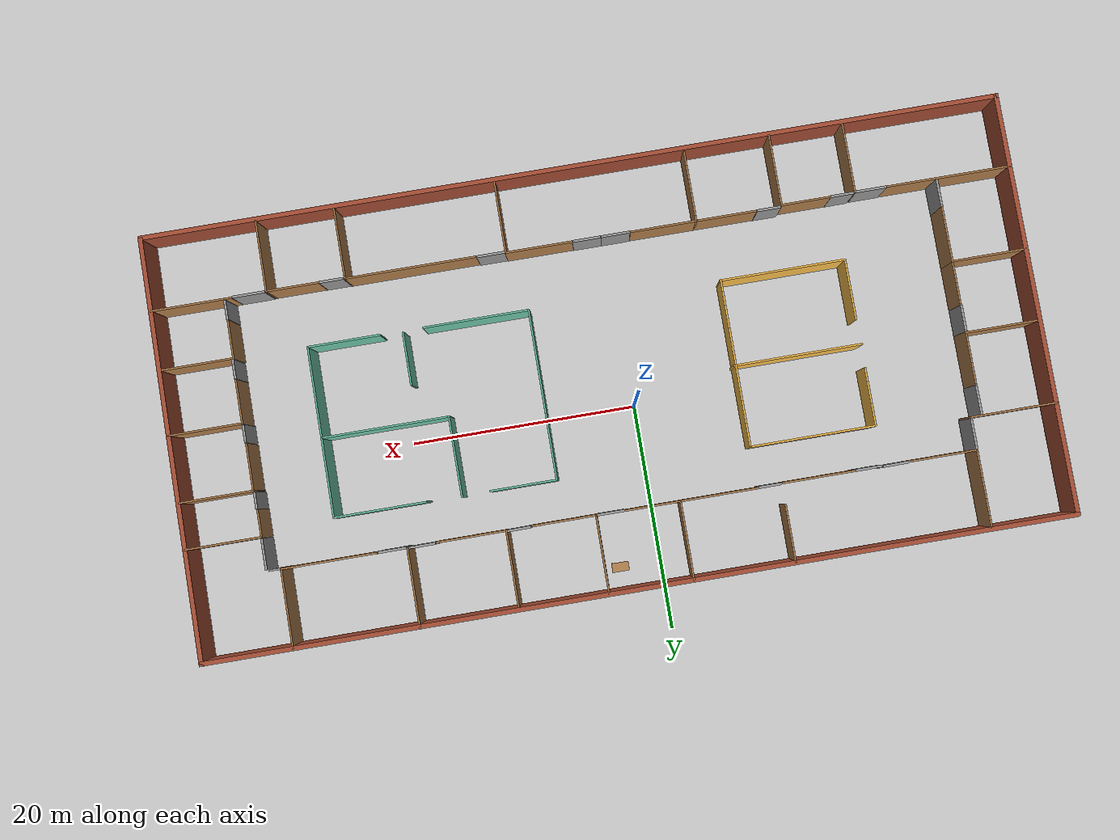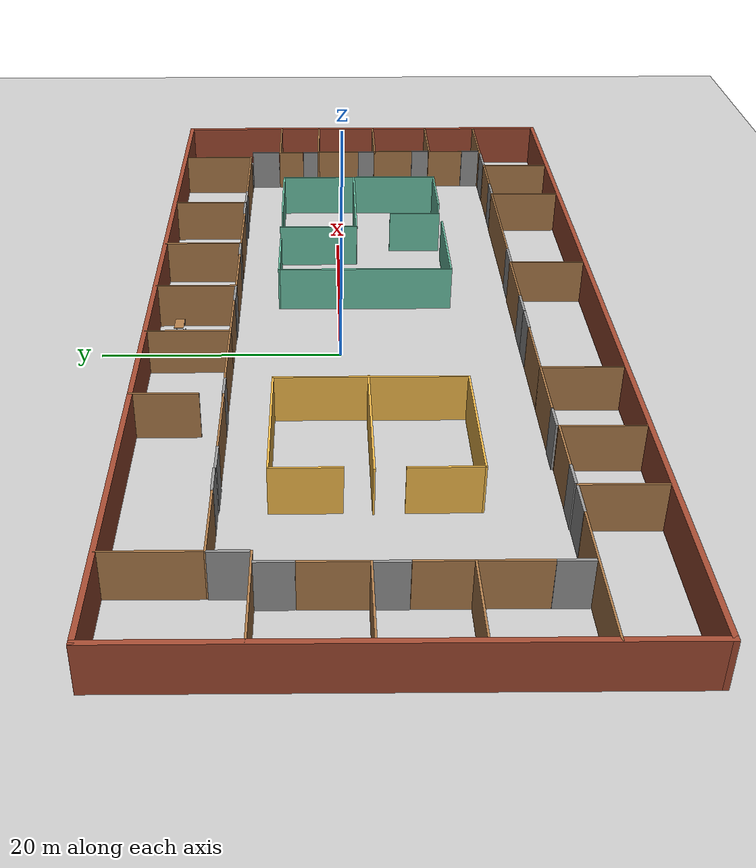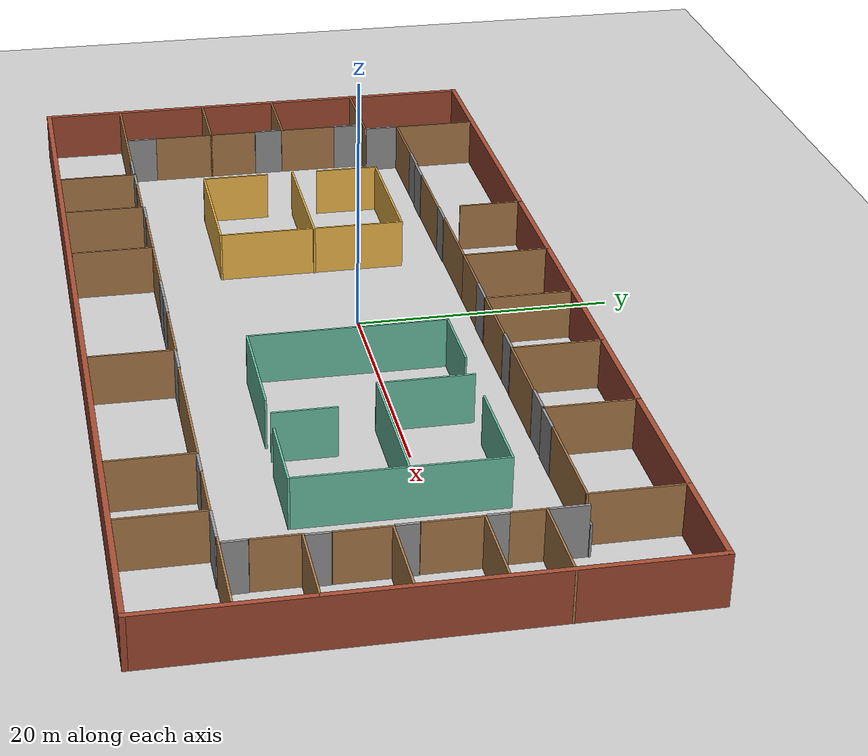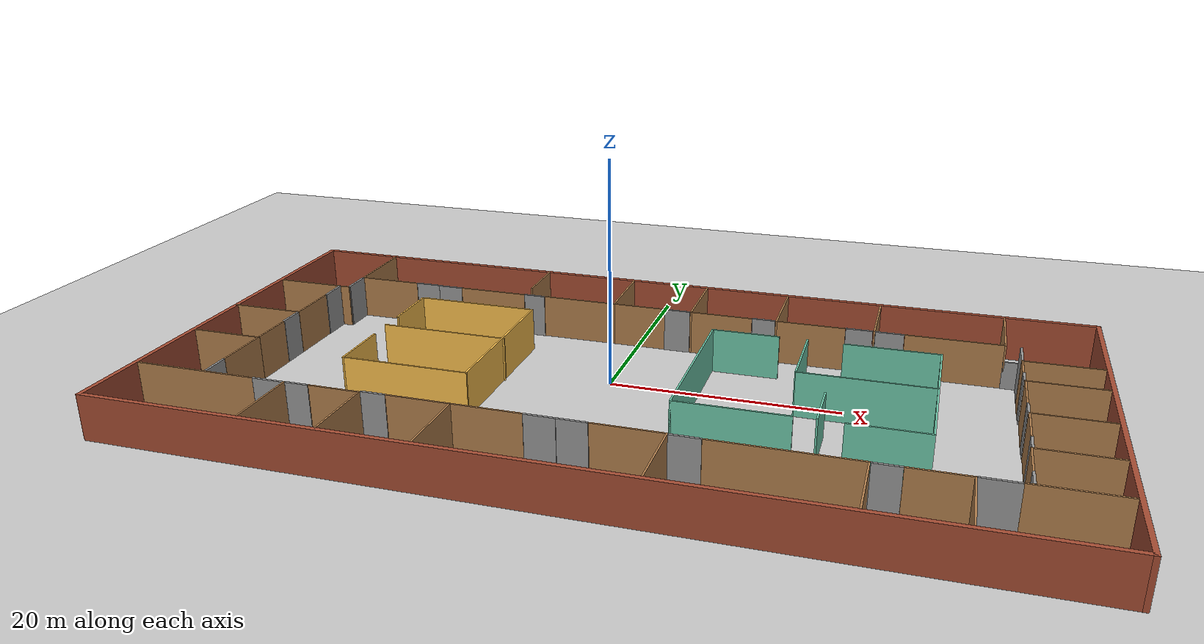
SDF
<sdf version="1.6">
 <world name="default">
  <model name="ground_plane">
   <static>1</static>
   <link name="link">
    <collision name="collision">
     <geometry><plane><normal>0 0 1</normal><size>100 100</size></plane></geometry>
     <surface><friction><ode><mu>100</mu><mu2>50</mu2></ode></friction></surface>
    </collision>
    <visual name="visual">
     <cast_shadows>0</cast_shadows>
     <geometry><plane><normal>0 0 1</normal><size>100 100</size></plane></geometry>
     <material>
      <script><uri>file://media/materials/scripts/gazebo.material</uri><name>Gazebo/Grey</name></script>
     </material>
    </visual>
   </link>
  </model>
  <model name="Building">
   <pose>2.1303 -2.9516 0 0 -0 0</pose>
   <link name="Door_0">
    <collision name="Door_0_Collision">
     <geometry><box><size>2.774 0.2 4</size></box></geometry>
     <pose>0 0 2 0 -0 0</pose>
    </collision>
    <visual name="Door_0_Visual">
     <pose>0 0 2 0 -0 0</pose>
     <geometry><box><size>2.774 0.2 4</size></box></geometry>
     <material>
      <script><uri>file://media/materials/scripts/gazebo.material</uri><name>Gazebo/Grey</name></script>
     </material>
    </visual>
    <pose>-30.849 10.4356 0 0 0 -1.57175</pose>
   </link>
   <link name="Door_1">
    <collision name="Door_1_Collision">
     <geometry><box><size>2.64 0.2 4</size></box></geometry>
     <pose>0 0 2 0 -0 0</pose>
    </collision>
    <visual name="Door_1_Visual">
     <pose>0 0 2 0 -0 0</pose>
     <geometry><box><size>2.64 0.2 4</size></box></geometry>
     <material>
      <script><uri>file://media/materials/scripts/gazebo.material</uri><name>Gazebo/Grey</name></script>
     </material>
    </visual>
    <pose>-31.8238 7.60149 0 0 0 -1.56515</pose>
   </link>
   <link name="Door_10">
    <collision name="Door_10_Collision">
     <geometry><box><size>2.534 0.2 4</size></box></geometry>
     <pose>0 0 2 0 -0 0</pose>
    </collision>
    <visual name="Door_10_Visual">
     <pose>0 0 2 0 -0 0</pose>
     <geometry><box><size>2.534 0.2 4</size></box></geometry>
     <material>
      <script><uri>file://media/materials/scripts/gazebo.material</uri><name>Gazebo/Grey</name></script>
     </material>
    </visual>
    <pose>8.16774 -12.2183 0 0 -0 0</pose>
   </link>
   <link name="Door_11">
    <collision name="Door_11_Collision">
     <geometry><box><size>2.195 0.2 4</size></box></geometry>
     <pose>0 0 2 0 -0 0</pose>
    </collision>
    <visual name="Door_11_Visual">
     <pose>0 0 2 0 -0 0</pose>
     <geometry><box><size>2.195 0.2 4</size></box></geometry>
     <material>
      <script><uri>file://media/materials/scripts/gazebo.material</uri><name>Gazebo/Grey</name></script>
     </material>
    </visual>
    <pose>22.36 -12.2885 0 0 -0 0</pose>
   </link>
   <link name="Door_12">
    <collision name="Door_12_Collision">
     <geometry><box><size>2.963 0.2 4</size></box></geometry>
     <pose>0 0 2 0 -0 0</pose>
    </collision>
    <visual name="Door_12_Visual">
     <pose>0 0 2 0 -0 0</pose>
     <geometry><box><size>2.963 0.2 4</size></box></geometry>
     <material>
      <script><uri>file://media/materials/scripts/gazebo.material</uri><name>Gazebo/Grey</name></script>
     </material>
    </visual>
    <pose>29.7338 -12.2643 0 0 -0 0</pose>
   </link>
   <link name="Door_13">
    <collision name="Door_13_Collision">
     <geometry><box><size>1.77 0.2 4</size></box></geometry>
     <pose>0 0 2 0 -0 0</pose>
    </collision>
    <visual name="Door_13_Visual">
     <pose>0 0 2 0 -0 0</pose>
     <geometry><box><size>1.77 0.2 4</size></box></geometry>
     <material>
      <script><uri>file://media/materials/scripts/gazebo.material</uri><name>Gazebo/Grey</name></script>
     </material>
    </visual>
    <pose>31.8662 -11.2352 0 0 -0 1.57708</pose>
   </link>
   <link name="Door_14">
    <collision name="Door_14_Collision">
     <geometry><box><size>1.73 0.2 4</size></box></geometry>
     <pose>0 0 2 0 -0 0</pose>
    </collision>
    <visual name="Door_14_Visual">
     <pose>0 0 2 0 -0 0</pose>
     <geometry><box><size>1.73 0.2 4</size></box></geometry>
     <material>
      <script><uri>file://media/materials/scripts/gazebo.material</uri><name>Gazebo/Grey</name></script>
     </material>
    </visual>
    <pose>31.9377 -5.93733 0 0 -0 1.5708</pose>
   </link>
   <link name="Door_15">
    <collision name="Door_15_Collision">
     <geometry><box><size>1.629 0.2 4</size></box></geometry>
     <pose>0 0 2 0 -0 0</pose>
    </collision>
    <visual name="Door_15_Visual">
     <pose>0 0 2 0 -0 0</pose>
     <geometry><box><size>1.629 0.2 4</size></box></geometry>
     <material>
      <script><uri>file://media/materials/scripts/gazebo.material</uri><name>Gazebo/Grey</name></script>
     </material>
    </visual>
    <pose>31.8756 -0.212635 0 0 -0 1.57428</pose>
   </link>
   <link name="Door_16">
    <collision name="Door_16_Collision">
     <geometry><box><size>1.525 0.2 4</size></box></geometry>
     <pose>0 0 2 0 -0 0</pose>
    </collision>
    <visual name="Door_16_Visual">
     <pose>0 0 2 0 -0 0</pose>
     <geometry><box><size>1.525 0.2 4</size></box></geometry>
     <material>
      <script><uri>file://media/materials/scripts/gazebo.material</uri><name>Gazebo/Grey</name></script>
     </material>
    </visual>
    <pose>31.7604 5.70164 0 0 -0 1.5708</pose>
   </link>
   <link name="Door_17">
    <collision name="Door_17_Collision">
     <geometry><box><size>2.76245 0.2 4</size></box></geometry>
     <pose>0 0 2 0 -0 0</pose>
    </collision>
    <visual name="Door_17_Visual">
     <pose>0 0 2 0 -0 0</pose>
     <geometry><box><size>2.76245 0.2 4</size></box></geometry>
     <material>
      <script><uri>file://media/materials/scripts/gazebo.material</uri><name>Gazebo/Grey</name></script>
     </material>
    </visual>
    <pose>31.7173 10.407 0 0 -0 1.57411</pose>
   </link>
   <link name="Door_18">
    <collision name="Door_18_Collision">
     <geometry><box><size>2.496 0.2 4</size></box></geometry>
     <pose>0 0 2 0 -0 0</pose>
    </collision>
    <visual name="Door_18_Visual">
     <pose>0 0 2 0 -0 0</pose>
     <geometry><box><size>2.496 0.2 4</size></box></geometry>
     <material>
      <script><uri>file://media/materials/scripts/gazebo.material</uri><name>Gazebo/Grey</name></script>
     </material>
    </visual>
    <pose>20.743 11.9143 0 0 0 -3.14024</pose>
   </link>
   <link name="Door_19">
    <collision name="Door_19_Collision">
     <geometry><box><size>2.35525 0.2 4</size></box></geometry>
     <pose>0 0 2 0 -0 0</pose>
    </collision>
    <visual name="Door_19_Visual">
     <pose>0 0 2 0 -0 0</pose>
     <geometry><box><size>2.35525 0.2 4</size></box></geometry>
     <material>
      <script><uri>file://media/materials/scripts/gazebo.material</uri><name>Gazebo/Grey</name></script>
     </material>
    </visual>
    <pose>18.0916 11.9605 0 0 0 -3.13542</pose>
   </link>
   <link name="Door_2">
    <collision name="Door_2_Collision">
     <geometry><box><size>2.36 0.2 4</size></box></geometry>
     <pose>0 0 2 0 -0 0</pose>
    </collision>
    <visual name="Door_2_Visual">
     <pose>0 0 2 0 -0 0</pose>
     <geometry><box><size>2.36 0.2 4</size></box></geometry>
     <material>
      <script><uri>file://media/materials/scripts/gazebo.material</uri><name>Gazebo/Grey</name></script>
     </material>
    </visual>
    <pose>-31.857 0.312971 0 0 0 -1.57415</pose>
   </link>
   <link name="Door_20">
    <collision name="Door_20_Collision">
     <geometry><box><size>2.08226 0.2 4</size></box></geometry>
     <pose>0 0 2 0 -0 0</pose>
    </collision>
    <visual name="Door_20_Visual">
     <pose>0 0 2 0 -0 0</pose>
     <geometry><box><size>2.08226 0.2 4</size></box></geometry>
     <material>
      <script><uri>file://media/materials/scripts/gazebo.material</uri><name>Gazebo/Grey</name></script>
     </material>
    </visual>
    <pose>9.57215 11.9434 0 0 0 -3.13246</pose>
   </link>
   <link name="Door_21">
    <collision name="Door_21_Collision">
     <geometry><box><size>2.4004 0.2 4</size></box></geometry>
     <pose>0 0 2 0 -0 0</pose>
    </collision>
    <visual name="Door_21_Visual">
     <pose>0 0 2 0 -0 0</pose>
     <geometry><box><size>2.4004 0.2 4</size></box></geometry>
     <material>
      <script><uri>file://media/materials/scripts/gazebo.material</uri><name>Gazebo/Grey</name></script>
     </material>
    </visual>
    <pose>1.52201 11.8997 0 0 -0 3.13892</pose>
   </link>
   <link name="Door_22">
    <collision name="Door_22_Collision">
     <geometry><box><size>2.02176 0.2 4</size></box></geometry>
     <pose>0 0 2 0 -0 0</pose>
    </collision>
    <visual name="Door_22_Visual">
     <pose>0 0 2 0 -0 0</pose>
     <geometry><box><size>2.02176 0.2 4</size></box></geometry>
     <material>
      <script><uri>file://media/materials/scripts/gazebo.material</uri><name>Gazebo/Grey</name></script>
     </material>
    </visual>
    <pose>-12.5547 11.8906 0 0 -0 0</pose>
   </link>
   <link name="Door_23">
    <collision name="Door_23_Collision">
     <geometry><box><size>2.385 0.2 4</size></box></geometry>
     <pose>0 0 2 0 -0 0</pose>
    </collision>
    <visual name="Door_23_Visual">
     <pose>0 0 2 0 -0 0</pose>
     <geometry><box><size>2.385 0.2 4</size></box></geometry>
     <material>
      <script><uri>file://media/materials/scripts/gazebo.material</uri><name>Gazebo/Grey</name></script>
     </material>
    </visual>
    <pose>-21.3031 11.8399 0 0 -0 0</pose>
   </link>
   <link name="Door_24">
    <collision name="Door_24_Collision">
     <geometry><box><size>2.38 0.2 4</size></box></geometry>
     <pose>0 0 2 0 -0 0</pose>
    </collision>
    <visual name="Door_24_Visual">
     <pose>0 0 2 0 -0 0</pose>
     <geometry><box><size>2.38 0.2 4</size></box></geometry>
     <material>
      <script><uri>file://media/materials/scripts/gazebo.material</uri><name>Gazebo/Grey</name></script>
     </material>
    </visual>
    <pose>-23.7055 11.8942 0 0 0 -3.13305</pose>
   </link>
   <link name="Door_3">
    <collision name="Door_3_Collision">
     <geometry><box><size>2.503 0.2 4</size></box></geometry>
     <pose>0 0 2 0 -0 0</pose>
    </collision>
    <visual name="Door_3_Visual">
     <pose>0 0 2 0 -0 0</pose>
     <geometry><box><size>2.503 0.2 4</size></box></geometry>
     <material>
      <script><uri>file://media/materials/scripts/gazebo.material</uri><name>Gazebo/Grey</name></script>
     </material>
    </visual>
    <pose>-31.8314 -11.0051 0 0 0 -1.56499</pose>
   </link>
   <link name="Door_4">
    <collision name="Door_4_Collision">
     <geometry><box><size>2.76 0.2 4</size></box></geometry>
     <pose>0 0 2 0 -0 0</pose>
    </collision>
    <visual name="Door_4_Visual">
     <pose>0 0 2 0 -0 0</pose>
     <geometry><box><size>2.76 0.2 4</size></box></geometry>
     <material>
      <script><uri>file://media/materials/scripts/gazebo.material</uri><name>Gazebo/Grey</name></script>
     </material>
    </visual>
    <pose>-25.9426 -12.3476 0 0 -0 0</pose>
   </link>
   <link name="Door_6">
    <collision name="Door_6_Collision">
     <geometry><box><size>2.064 0.2 4</size></box></geometry>
     <pose>0 0 2 0 -0 0</pose>
    </collision>
    <visual name="Door_6_Visual">
     <pose>0 0 2 0 -0 0</pose>
     <geometry><box><size>2.064 0.2 4</size></box></geometry>
     <material>
      <script><uri>file://media/materials/scripts/gazebo.material</uri><name>Gazebo/Grey</name></script>
     </material>
    </visual>
    <pose>-23.3644 -12.2986 0 0 -0 0</pose>
   </link>
   <link name="Door_7">
    <collision name="Door_7_Collision">
     <geometry><box><size>2.14008 0.2 4</size></box></geometry>
     <pose>0 0 2 0 -0 0</pose>
    </collision>
    <visual name="Door_7_Visual">
     <pose>0 0 2 0 -0 0</pose>
     <geometry><box><size>2.14008 0.2 4</size></box></geometry>
     <material>
      <script><uri>file://media/materials/scripts/gazebo.material</uri><name>Gazebo/Grey</name></script>
     </material>
    </visual>
    <pose>-16.7382 -12.1348 0 0 -0 0</pose>
   </link>
   <link name="Door_8">
    <collision name="Door_8_Collision">
     <geometry><box><size>2.518 0.2 4</size></box></geometry>
     <pose>0 0 2 0 -0 0</pose>
    </collision>
    <visual name="Door_8_Visual">
     <pose>0 0 2 0 -0 0</pose>
     <geometry><box><size>2.518 0.2 4</size></box></geometry>
     <material>
      <script><uri>file://media/materials/scripts/gazebo.material</uri><name>Gazebo/Grey</name></script>
     </material>
    </visual>
    <pose>-0.38717 -12.1484 0 0 -0 0</pose>
   </link>
   <link name="Door_9">
    <collision name="Door_9_Collision">
     <geometry><box><size>2.596 0.2 4</size></box></geometry>
     <pose>0 0 2 0 -0 0</pose>
    </collision>
    <visual name="Door_9_Visual">
     <pose>0 0 2 0 -0 0</pose>
     <geometry><box><size>2.596 0.2 4</size></box></geometry>
     <material>
      <script><uri>file://media/materials/scripts/gazebo.material</uri><name>Gazebo/Grey</name></script>
     </material>
    </visual>
    <pose>-2.96764 -12.1539 0 0 0 -3.14159</pose>
   </link>
   <link name="Wall_212">
    <collision name="Wall_212_Collision">
     <geometry><box><size>77.2499 0.4 4</size></box></geometry>
     <pose>0 0 2 0 -0 0</pose>
    </collision>
    <visual name="Wall_212_Visual">
     <pose>0 0 2 0 -0 0</pose>
     <geometry><box><size>77.2499 0.4 4</size></box></geometry>
     <material>
      <script><uri>file://media/materials/scripts/gazebo.material</uri><name>Gazebo/Bricks</name></script>
      <ambient>1 1 1 1</ambient>
     </material>
     <meta><layer>0</layer></meta>
    </visual>
    <pose>-0.008498 18.8 0 0 -0 0</pose>
   </link>
   <link name="Wall_213">
    <collision name="Wall_213_Collision">
     <geometry><box><size>38.0003 0.4 4</size></box></geometry>
     <pose>0 0 2 0 -0 0</pose>
    </collision>
    <visual name="Wall_213_Visual">
     <pose>0 0 2 0 -0 0</pose>
     <geometry><box><size>38.0003 0.4 4</size></box></geometry>
     <material>
      <script><uri>file://media/materials/scripts/gazebo.material</uri><name>Gazebo/Bricks</name></script>
      <ambient>1 1 1 1</ambient>
     </material>
     <meta><layer>0</layer></meta>
    </visual>
    <pose>38.4165 -1e-06 0 0 0 -1.5708</pose>
   </link>
   <link name="Wall_214">
    <collision name="Wall_214_Collision">
     <geometry><box><size>77.25 0.4 4</size></box></geometry>
     <pose>0 0 2 0 -0 0</pose>
    </collision>
    <visual name="Wall_214_Visual">
     <pose>0 0 2 0 -0 0</pose>
     <geometry><box><size>77.25 0.4 4</size></box></geometry>
     <material>
      <script><uri>file://media/materials/scripts/gazebo.material</uri><name>Gazebo/Bricks</name></script>
      <ambient>1 1 1 1</ambient>
     </material>
     <meta><layer>0</layer></meta>
    </visual>
    <pose>-0.008498 -18.8 0 0 -0 3.14159</pose>
   </link>
   <link name="Wall_215">
    <collision name="Wall_215_Collision">
     <geometry><box><size>37.9997 0.4 4</size></box></geometry>
     <pose>0 0 2 0 -0 0</pose>
    </collision>
    <visual name="Wall_215_Visual">
     <pose>0 0 2 0 -0 0</pose>
     <geometry><box><size>37.9997 0.4 4</size></box></geometry>
     <material>
      <script><uri>file://media/materials/scripts/gazebo.material</uri><name>Gazebo/Bricks</name></script>
      <ambient>1 1 1 1</ambient>
     </material>
     <meta><layer>0</layer></meta>
    </visual>
    <pose>-38.4335 -1e-06 0 0 -0 1.5708</pose>
   </link>
   <link name="Wall_218">
    <collision name="Wall_218_Collision">
     <geometry><box><size>7.75 0.15 4</size></box></geometry>
     <pose>0 0 2 0 -0 0</pose>
    </collision>
    <visual name="Wall_218_Visual">
     <pose>0 0 2 0 -0 0</pose>
     <geometry><box><size>7.75 0.15 4</size></box></geometry>
     <material>
      <script><uri>file://media/materials/scripts/gazebo.material</uri><name>Gazebo/Wood</name></script>
      <ambient>1 1 1 1</ambient>
     </material>
     <meta><layer>0</layer></meta>
    </visual>
    <pose>-34.7005 8.965 0 0 -0 0</pose>
   </link>
   <link name="Wall_220">
    <collision name="Wall_220_Collision">
     <geometry><box><size>6.75 0.15 4</size></box></geometry>
     <pose>0 0 2 0 -0 0</pose>
    </collision>
    <visual name="Wall_220_Visual">
     <pose>0 0 2 0 -0 0</pose>
     <geometry><box><size>6.75 0.15 4</size></box></geometry>
     <material>
      <script><uri>file://media/materials/scripts/gazebo.material</uri><name>Gazebo/Wood</name></script>
      <ambient>1 1 1 1</ambient>
     </material>
     <meta><layer>0</layer></meta>
    </visual>
    <pose>-35.1305 1.578 0 0 -0 0</pose>
   </link>
   <link name="Wall_221">
    <collision name="Wall_221_Collision">
     <geometry><box><size>4.75 0.15 4</size></box></geometry>
     <pose>0 0 2 0 -0 0</pose>
    </collision>
    <visual name="Wall_221_Visual">
     <pose>0 0 2 0 -0 0</pose>
     <geometry><box><size>4.75 0.15 4</size></box></geometry>
     <material>
      <script><uri>file://media/materials/scripts/gazebo.material</uri><name>Gazebo/Wood</name></script>
      <ambient>1 1 1 1</ambient>
     </material>
     <meta><layer>0</layer></meta>
    </visual>
    <pose>-31.8305 3.878 0 0 -0 1.5708</pose>
   </link>
   <link name="Wall_223">
    <collision name="Wall_223_Collision">
     <geometry><box><size>6.75 0.15 4</size></box></geometry>
     <pose>0 0 2 0 -0 0</pose>
    </collision>
    <visual name="Wall_223_Visual">
     <pose>0 0 2 0 -0 0</pose>
     <geometry><box><size>6.75 0.15 4</size></box></geometry>
     <material>
      <script><uri>file://media/materials/scripts/gazebo.material</uri><name>Gazebo/Wood</name></script>
      <ambient>1 1 1 1</ambient>
     </material>
     <meta><layer>0</layer></meta>
    </visual>
    <pose>-35.1305 -4.825 0 0 -0 0</pose>
   </link>
   <link name="Wall_224">
    <collision name="Wall_224_Collision">
     <geometry><box><size>4 0.15 4</size></box></geometry>
     <pose>0 0 2 0 -0 0</pose>
    </collision>
    <visual name="Wall_224_Visual">
     <pose>0 0 2 0 -0 0</pose>
     <geometry><box><size>4 0.15 4</size></box></geometry>
     <material>
      <script><uri>file://media/materials/scripts/gazebo.material</uri><name>Gazebo/Wood</name></script>
      <ambient>1 1 1 1</ambient>
     </material>
     <meta><layer>0</layer></meta>
    </visual>
    <pose>-31.8305 -2.9 0 0 -0 1.5708</pose>
   </link>
   <link name="Wall_226">
    <collision name="Wall_226_Collision">
     <geometry><box><size>5 0.15 4</size></box></geometry>
     <pose>0 0 2 0 -0 0</pose>
    </collision>
    <visual name="Wall_226_Visual">
     <pose>0 0 2 0 -0 0</pose>
     <geometry><box><size>5 0.15 4</size></box></geometry>
     <material>
      <script><uri>file://media/materials/scripts/gazebo.material</uri><name>Gazebo/Wood</name></script>
      <ambient>1 1 1 1</ambient>
     </material>
     <meta><layer>0</layer></meta>
    </visual>
    <pose>-31.8305 -7.25 0 0 0 -1.5708</pose>
   </link>
   <link name="Wall_228">
    <collision name="Wall_228_Collision">
     <geometry><box><size>11.25 0.15 4</size></box></geometry>
     <pose>0 0 2 0 -0 0</pose>
    </collision>
    <visual name="Wall_228_Visual">
     <pose>0 0 2 0 -0 0</pose>
     <geometry><box><size>11.25 0.15 4</size></box></geometry>
     <material>
      <script><uri>file://media/materials/scripts/gazebo.material</uri><name>Gazebo/Wood</name></script>
      <ambient>1 1 1 1</ambient>
     </material>
     <meta><layer>0</layer></meta>
    </visual>
    <pose>-32.9505 -12.353 0 0 -0 0</pose>
   </link>
   <link name="Wall_230">
    <collision name="Wall_230_Collision">
     <geometry><box><size>6.35 0.15 4</size></box></geometry>
     <pose>0 0 2 0 -0 0</pose>
    </collision>
    <visual name="Wall_230_Visual">
     <pose>0 0 2 0 -0 0</pose>
     <geometry><box><size>6.35 0.15 4</size></box></geometry>
     <material>
      <script><uri>file://media/materials/scripts/gazebo.material</uri><name>Gazebo/Wood</name></script>
      <ambient>1 1 1 1</ambient>
     </material>
     <meta><layer>0</layer></meta>
    </visual>
    <pose>-24.4995 -15.462 0 0 0 -1.5708</pose>
   </link>
   <link name="Wall_232">
    <collision name="Wall_232_Collision">
     <geometry><box><size>6.5 0.15 4</size></box></geometry>
     <pose>0 0 2 0 -0 0</pose>
    </collision>
    <visual name="Wall_232_Visual">
     <pose>0 0 2 0 -0 0</pose>
     <geometry><box><size>6.5 0.15 4</size></box></geometry>
     <material>
      <script><uri>file://media/materials/scripts/gazebo.material</uri><name>Gazebo/Wood</name></script>
      <ambient>1 1 1 1</ambient>
     </material>
     <meta><layer>0</layer></meta>
    </visual>
    <pose>-17.8855 -15.458 0 0 0 -1.5708</pose>
   </link>
   <link name="Wall_234">
    <collision name="Wall_234_Collision">
     <geometry><box><size>5.5 0.15 4</size></box></geometry>
     <pose>0 0 2 0 -0 0</pose>
    </collision>
    <visual name="Wall_234_Visual">
     <pose>0 0 2 0 -0 0</pose>
     <geometry><box><size>5.5 0.15 4</size></box></geometry>
     <material>
      <script><uri>file://media/materials/scripts/gazebo.material</uri><name>Gazebo/Wood</name></script>
      <ambient>1 1 1 1</ambient>
     </material>
     <meta><layer>0</layer></meta>
    </visual>
    <pose>-12.8895 -12.142 0 0 -0 0</pose>
   </link>
   <link name="Wall_235">
    <collision name="Wall_235_Collision">
     <geometry><box><size>6.5 0.15 4</size></box></geometry>
     <pose>0 0 2 0 -0 0</pose>
    </collision>
    <visual name="Wall_235_Visual">
     <pose>0 0 2 0 -0 0</pose>
     <geometry><box><size>6.5 0.15 4</size></box></geometry>
     <material>
      <script><uri>file://media/materials/scripts/gazebo.material</uri><name>Gazebo/Wood</name></script>
      <ambient>1 1 1 1</ambient>
     </material>
     <meta><layer>0</layer></meta>
    </visual>
    <pose>-10.2145 -15.317 0 0 0 -1.5708</pose>
   </link>
   <link name="Wall_237">
    <collision name="Wall_237_Collision">
     <geometry><box><size>6 0.15 4</size></box></geometry>
     <pose>0 0 2 0 -0 0</pose>
    </collision>
    <visual name="Wall_237_Visual">
     <pose>0 0 2 0 -0 0</pose>
     <geometry><box><size>6 0.15 4</size></box></geometry>
     <material>
      <script><uri>file://media/materials/scripts/gazebo.material</uri><name>Gazebo/Wood</name></script>
      <ambient>1 1 1 1</ambient>
     </material>
     <meta><layer>0</layer></meta>
    </visual>
    <pose>-7.2895 -12.142 0 0 -0 0</pose>
   </link>
   <link name="Wall_239">
    <collision name="Wall_239_Collision">
     <geometry><box><size>6 0.15 4</size></box></geometry>
     <pose>0 0 2 0 -0 0</pose>
    </collision>
    <visual name="Wall_239_Visual">
     <pose>0 0 2 0 -0 0</pose>
     <geometry><box><size>6 0.15 4</size></box></geometry>
     <material>
      <script><uri>file://media/materials/scripts/gazebo.material</uri><name>Gazebo/Wood</name></script>
      <ambient>1 1 1 1</ambient>
     </material>
     <meta><layer>0</layer></meta>
    </visual>
    <pose>3.90962 -12.1515 0 0 -0 0</pose>
   </link>
   <link name="Wall_240">
    <collision name="Wall_240_Collision">
     <geometry><box><size>6.54539 0.15 4</size></box></geometry>
     <pose>0 0 2 0 -0 0</pose>
    </collision>
    <visual name="Wall_240_Visual">
     <pose>0 0 2 0 -0 0</pose>
     <geometry><box><size>6.54539 0.15 4</size></box></geometry>
     <material>
      <script><uri>file://media/materials/scripts/gazebo.material</uri><name>Gazebo/Wood</name></script>
      <ambient>1 1 1 1</ambient>
     </material>
     <meta><layer>0</layer></meta>
    </visual>
    <pose>6.82706 -15.3643 0 0 0 -1.57316</pose>
   </link>
   <link name="Wall_242">
    <collision name="Wall_242_Collision">
     <geometry><box><size>11.75 0.15 4</size></box></geometry>
     <pose>0 0 2 0 -0 0</pose>
    </collision>
    <visual name="Wall_242_Visual">
     <pose>0 0 2 0 -0 0</pose>
     <geometry><box><size>11.75 0.15 4</size></box></geometry>
     <material>
      <script><uri>file://media/materials/scripts/gazebo.material</uri><name>Gazebo/Wood</name></script>
      <ambient>1 1 1 1</ambient>
     </material>
     <meta><layer>0</layer></meta>
    </visual>
    <pose>15.3208 -12.2422 0 0 -0 0</pose>
   </link>
   <link name="Wall_243">
    <collision name="Wall_243_Collision">
     <geometry><box><size>6.46979 0.15 4</size></box></geometry>
     <pose>0 0 2 0 -0 0</pose>
    </collision>
    <visual name="Wall_243_Visual">
     <pose>0 0 2 0 -0 0</pose>
     <geometry><box><size>6.46979 0.15 4</size></box></geometry>
     <material>
      <script><uri>file://media/materials/scripts/gazebo.material</uri><name>Gazebo/Wood</name></script>
      <ambient>1 1 1 1</ambient>
     </material>
     <meta><layer>0</layer></meta>
    </visual>
    <pose>21.1667 -15.4021 0 0 0 -1.56736</pose>
   </link>
   <link name="Wall_245">
    <collision name="Wall_245_Collision">
     <geometry><box><size>4.75 0.15 4</size></box></geometry>
     <pose>0 0 2 0 -0 0</pose>
    </collision>
    <visual name="Wall_245_Visual">
     <pose>0 0 2 0 -0 0</pose>
     <geometry><box><size>4.75 0.15 4</size></box></geometry>
     <material>
      <script><uri>file://media/materials/scripts/gazebo.material</uri><name>Gazebo/Wood</name></script>
      <ambient>1 1 1 1</ambient>
     </material>
     <meta><layer>0</layer></meta>
    </visual>
    <pose>25.8545 -12.283 0 0 -0 0</pose>
   </link>
   <link name="Wall_246">
    <collision name="Wall_246_Collision">
     <geometry><box><size>6.5 0.15 4</size></box></geometry>
     <pose>0 0 2 0 -0 0</pose>
    </collision>
    <visual name="Wall_246_Visual">
     <pose>0 0 2 0 -0 0</pose>
     <geometry><box><size>6.5 0.15 4</size></box></geometry>
     <material>
      <script><uri>file://media/materials/scripts/gazebo.material</uri><name>Gazebo/Wood</name></script>
      <ambient>1 1 1 1</ambient>
     </material>
     <meta><layer>0</layer></meta>
    </visual>
    <pose>28.1545 -15.458 0 0 0 -1.5708</pose>
   </link>
   <link name="Wall_248">
    <collision name="Wall_248_Collision">
     <geometry><box><size>7.25 0.15 4</size></box></geometry>
     <pose>0 0 2 0 -0 0</pose>
    </collision>
    <visual name="Wall_248_Visual">
     <pose>0 0 2 0 -0 0</pose>
     <geometry><box><size>7.25 0.15 4</size></box></geometry>
     <material>
      <script><uri>file://media/materials/scripts/gazebo.material</uri><name>Gazebo/Wood</name></script>
      <ambient>1 1 1 1</ambient>
     </material>
     <meta><layer>0</layer></meta>
    </visual>
    <pose>34.8487 -12.2236 0 0 -0 0</pose>
   </link>
   <link name="Wall_250">
    <collision name="Wall_250_Collision">
     <geometry><box><size>3.5 0.15 4</size></box></geometry>
     <pose>0 0 2 0 -0 0</pose>
    </collision>
    <visual name="Wall_250_Visual">
     <pose>0 0 2 0 -0 0</pose>
     <geometry><box><size>3.5 0.15 4</size></box></geometry>
     <material>
      <script><uri>file://media/materials/scripts/gazebo.material</uri><name>Gazebo/Wood</name></script>
      <ambient>1 1 1 1</ambient>
     </material>
     <meta><layer>0</layer></meta>
    </visual>
    <pose>31.8485 -8.578 0 0 -0 1.5708</pose>
   </link>
   <link name="Wall_251">
    <collision name="Wall_251_Collision">
     <geometry><box><size>6.75 0.15 4</size></box></geometry>
     <pose>0 0 2 0 -0 0</pose>
    </collision>
    <visual name="Wall_251_Visual">
     <pose>0 0 2 0 -0 0</pose>
     <geometry><box><size>6.75 0.15 4</size></box></geometry>
     <material>
      <script><uri>file://media/materials/scripts/gazebo.material</uri><name>Gazebo/Wood</name></script>
      <ambient>1 1 1 1</ambient>
     </material>
     <meta><layer>0</layer></meta>
    </visual>
    <pose>35.1485 -6.903 0 0 -0 0</pose>
   </link>
   <link name="Wall_253">
    <collision name="Wall_253_Collision">
     <geometry><box><size>4 0.15 4</size></box></geometry>
     <pose>0 0 2 0 -0 0</pose>
    </collision>
    <visual name="Wall_253_Visual">
     <pose>0 0 2 0 -0 0</pose>
     <geometry><box><size>4 0.15 4</size></box></geometry>
     <material>
      <script><uri>file://media/materials/scripts/gazebo.material</uri><name>Gazebo/Wood</name></script>
      <ambient>1 1 1 1</ambient>
     </material>
     <meta><layer>0</layer></meta>
    </visual>
    <pose>31.9195 -3.051 0 0 -0 1.5708</pose>
   </link>
   <link name="Wall_254">
    <collision name="Wall_254_Collision">
     <geometry><box><size>6.75 0.15 4</size></box></geometry>
     <pose>0 0 2 0 -0 0</pose>
    </collision>
    <visual name="Wall_254_Visual">
     <pose>0 0 2 0 -0 0</pose>
     <geometry><box><size>6.75 0.15 4</size></box></geometry>
     <material>
      <script><uri>file://media/materials/scripts/gazebo.material</uri><name>Gazebo/Wood</name></script>
      <ambient>1 1 1 1</ambient>
     </material>
     <meta><layer>0</layer></meta>
    </visual>
    <pose>35.2195 -1.126 0 0 -0 0</pose>
   </link>
   <link name="Wall_256">
    <collision name="Wall_256_Collision">
     <geometry><box><size>4.25 0.15 4</size></box></geometry>
     <pose>0 0 2 0 -0 0</pose>
    </collision>
    <visual name="Wall_256_Visual">
     <pose>0 0 2 0 -0 0</pose>
     <geometry><box><size>4.25 0.15 4</size></box></geometry>
     <material>
      <script><uri>file://media/materials/scripts/gazebo.material</uri><name>Gazebo/Wood</name></script>
      <ambient>1 1 1 1</ambient>
     </material>
     <meta><layer>0</layer></meta>
    </visual>
    <pose>31.8299 2.773 0 0 -0 1.5708</pose>
   </link>
   <link name="Wall_257">
    <collision name="Wall_257_Collision">
     <geometry><box><size>6.62866 0.15 4</size></box></geometry>
     <pose>0 0 2 0 -0 0</pose>
    </collision>
    <visual name="Wall_257_Visual">
     <pose>0 0 2 0 -0 0</pose>
     <geometry><box><size>6.62866 0.15 4</size></box></geometry>
     <material>
      <script><uri>file://media/materials/scripts/gazebo.material</uri><name>Gazebo/Wood</name></script>
      <ambient>1 1 1 1</ambient>
     </material>
     <meta><layer>0</layer></meta>
    </visual>
    <pose>35.0692 4.83311 0 0 0 -0.003122</pose>
   </link>
   <link name="Wall_259">
    <collision name="Wall_259_Collision">
     <geometry><box><size>2.5 0.15 4</size></box></geometry>
     <pose>0 0 2 0 -0 0</pose>
    </collision>
    <visual name="Wall_259_Visual">
     <pose>0 0 2 0 -0 0</pose>
     <geometry><box><size>2.5 0.15 4</size></box></geometry>
     <material>
      <script><uri>file://media/materials/scripts/gazebo.material</uri><name>Gazebo/Wood</name></script>
      <ambient>1 1 1 1</ambient>
     </material>
     <meta><layer>0</layer></meta>
    </visual>
    <pose>31.7085 7.738 0 0 -0 1.5708</pose>
   </link>
   <link name="Wall_260">
    <collision name="Wall_260_Collision">
     <geometry><box><size>7 0.15 4</size></box></geometry>
     <pose>0 0 2 0 -0 0</pose>
    </collision>
    <visual name="Wall_260_Visual">
     <pose>0 0 2 0 -0 0</pose>
     <geometry><box><size>7 0.15 4</size></box></geometry>
     <material>
      <script><uri>file://media/materials/scripts/gazebo.material</uri><name>Gazebo/Wood</name></script>
      <ambient>1 1 1 1</ambient>
     </material>
     <meta><layer>0</layer></meta>
    </visual>
    <pose>35.1335 8.913 0 0 -0 0</pose>
   </link>
   <link name="Wall_263">
    <collision name="Wall_263_Collision">
     <geometry><box><size>7.05939 0.15 4</size></box></geometry>
     <pose>0 0 2 0 -0 0</pose>
    </collision>
    <visual name="Wall_263_Visual">
     <pose>0 0 2 0 -0 0</pose>
     <geometry><box><size>7.05939 0.15 4</size></box></geometry>
     <material>
      <script><uri>file://media/materials/scripts/gazebo.material</uri><name>Gazebo/Wood</name></script>
      <ambient>1 1 1 1</ambient>
     </material>
     <meta><layer>0</layer></meta>
    </visual>
    <pose>30.4415 15.3503 0 0 0 -1.5708</pose>
   </link>
   <link name="Wall_264">
    <collision name="Wall_264_Collision">
     <geometry><box><size>8.5 0.15 4</size></box></geometry>
     <pose>0 0 2 0 -0 0</pose>
    </collision>
    <visual name="Wall_264_Visual">
     <pose>0 0 2 0 -0 0</pose>
     <geometry><box><size>8.5 0.15 4</size></box></geometry>
     <material>
      <script><uri>file://media/materials/scripts/gazebo.material</uri><name>Gazebo/Wood</name></script>
      <ambient>1 1 1 1</ambient>
     </material>
     <meta><layer>0</layer></meta>
    </visual>
    <pose>26.2665 11.9266 0 0 -0 3.14159</pose>
   </link>
   <link name="Wall_266">
    <collision name="Wall_266_Collision">
     <geometry><box><size>7 0.15 4</size></box></geometry>
     <pose>0 0 2 0 -0 0</pose>
    </collision>
    <visual name="Wall_266_Visual">
     <pose>0 0 2 0 -0 0</pose>
     <geometry><box><size>7 0.15 4</size></box></geometry>
     <material>
      <script><uri>file://media/materials/scripts/gazebo.material</uri><name>Gazebo/Wood</name></script>
      <ambient>1 1 1 1</ambient>
     </material>
     <meta><layer>0</layer></meta>
    </visual>
    <pose>19.3955 15.45 0 0 0 -1.5708</pose>
   </link>
   <link name="Wall_268">
    <collision name="Wall_268_Collision">
     <geometry><box><size>6.25 0.15 4</size></box></geometry>
     <pose>0 0 2 0 -0 0</pose>
    </collision>
    <visual name="Wall_268_Visual">
     <pose>0 0 2 0 -0 0</pose>
     <geometry><box><size>6.25 0.15 4</size></box></geometry>
     <material>
      <script><uri>file://media/materials/scripts/gazebo.material</uri><name>Gazebo/Wood</name></script>
      <ambient>1 1 1 1</ambient>
     </material>
     <meta><layer>0</layer></meta>
    </visual>
    <pose>13.7665 11.91 0 0 -0 3.14159</pose>
   </link>
   <link name="Wall_269">
    <collision name="Wall_269_Collision">
     <geometry><box><size>7 0.15 4</size></box></geometry>
     <pose>0 0 2 0 -0 0</pose>
    </collision>
    <visual name="Wall_269_Visual">
     <pose>0 0 2 0 -0 0</pose>
     <geometry><box><size>7 0.15 4</size></box></geometry>
     <material>
      <script><uri>file://media/materials/scripts/gazebo.material</uri><name>Gazebo/Wood</name></script>
      <ambient>1 1 1 1</ambient>
     </material>
     <meta><layer>0</layer></meta>
    </visual>
    <pose>10.7165 15.335 0 0 -0 1.5708</pose>
   </link>
   <link name="Wall_271">
    <collision name="Wall_271_Collision">
     <geometry><box><size>5.75 0.15 4</size></box></geometry>
     <pose>0 0 2 0 -0 0</pose>
    </collision>
    <visual name="Wall_271_Visual">
     <pose>0 0 2 0 -0 0</pose>
     <geometry><box><size>5.75 0.15 4</size></box></geometry>
     <material>
      <script><uri>file://media/materials/scripts/gazebo.material</uri><name>Gazebo/Wood</name></script>
      <ambient>1 1 1 1</ambient>
     </material>
     <meta><layer>0</layer></meta>
    </visual>
    <pose>5.6175 11.895 0 0 -0 3.14159</pose>
   </link>
   <link name="Wall_272">
    <collision name="Wall_272_Collision">
     <geometry><box><size>7 0.15 4</size></box></geometry>
     <pose>0 0 2 0 -0 0</pose>
    </collision>
    <visual name="Wall_272_Visual">
     <pose>0 0 2 0 -0 0</pose>
     <geometry><box><size>7 0.15 4</size></box></geometry>
     <material>
      <script><uri>file://media/materials/scripts/gazebo.material</uri><name>Gazebo/Wood</name></script>
      <ambient>1 1 1 1</ambient>
     </material>
     <meta><layer>0</layer></meta>
    </visual>
    <pose>2.8175 15.32 0 0 -0 1.5708</pose>
   </link>
   <link name="Wall_274">
    <collision name="Wall_274_Collision">
     <geometry><box><size>5 0.15 4</size></box></geometry>
     <pose>0 0 2 0 -0 0</pose>
    </collision>
    <visual name="Wall_274_Visual">
     <pose>0 0 2 0 -0 0</pose>
     <geometry><box><size>5 0.15 4</size></box></geometry>
     <material>
      <script><uri>file://media/materials/scripts/gazebo.material</uri><name>Gazebo/Wood</name></script>
      <ambient>1 1 1 1</ambient>
     </material>
     <meta><layer>0</layer></meta>
    </visual>
    <pose>-2.1885 11.925 0 0 -0 3.14159</pose>
   </link>
   <link name="Wall_275">
    <collision name="Wall_275_Collision">
     <geometry><box><size>7 0.15 4</size></box></geometry>
     <pose>0 0 2 0 -0 0</pose>
    </collision>
    <visual name="Wall_275_Visual">
     <pose>0 0 2 0 -0 0</pose>
     <geometry><box><size>7 0.15 4</size></box></geometry>
     <material>
      <script><uri>file://media/materials/scripts/gazebo.material</uri><name>Gazebo/Wood</name></script>
      <ambient>1 1 1 1</ambient>
     </material>
     <meta><layer>0</layer></meta>
    </visual>
    <pose>-4.6135 15.35 0 0 -0 1.5708</pose>
   </link>
   <link name="Wall_277">
    <collision name="Wall_277_Collision">
     <geometry><box><size>7 0.15 4</size></box></geometry>
     <pose>0 0 2 0 -0 0</pose>
    </collision>
    <visual name="Wall_277_Visual">
     <pose>0 0 2 0 -0 0</pose>
     <geometry><box><size>7 0.15 4</size></box></geometry>
     <material>
      <script><uri>file://media/materials/scripts/gazebo.material</uri><name>Gazebo/Wood</name></script>
      <ambient>1 1 1 1</ambient>
     </material>
     <meta><layer>0</layer></meta>
    </visual>
    <pose>-8.0385 11.925 0 0 -0 3.14159</pose>
   </link>
   <link name="Wall_279">
    <collision name="Wall_279_Collision">
     <geometry><box><size>5.25 0.15 4</size></box></geometry>
     <pose>0 0 2 0 -0 0</pose>
    </collision>
    <visual name="Wall_279_Visual">
     <pose>0 0 2 0 -0 0</pose>
     <geometry><box><size>5.25 0.15 4</size></box></geometry>
     <material>
      <script><uri>file://media/materials/scripts/gazebo.material</uri><name>Gazebo/Wood</name></script>
      <ambient>1 1 1 1</ambient>
     </material>
     <meta><layer>0</layer></meta>
    </visual>
    <pose>-13.5545 16.302 0 0 -0 1.5708</pose>
   </link>
   <link name="Wall_281">
    <collision name="Wall_281_Collision">
     <geometry><box><size>6.5 0.15 4</size></box></geometry>
     <pose>0 0 2 0 -0 0</pose>
    </collision>
    <visual name="Wall_281_Visual">
     <pose>0 0 2 0 -0 0</pose>
     <geometry><box><size>6.5 0.15 4</size></box></geometry>
     <material>
      <script><uri>file://media/materials/scripts/gazebo.material</uri><name>Gazebo/Wood</name></script>
      <ambient>1 1 1 1</ambient>
     </material>
     <meta><layer>0</layer></meta>
    </visual>
    <pose>-16.8595 11.861 0 0 -0 3.14159</pose>
   </link>
   <link name="Wall_283">
    <collision name="Wall_283_Collision">
     <geometry><box><size>6 0.15 4</size></box></geometry>
     <pose>0 0 2 0 -0 0</pose>
    </collision>
    <visual name="Wall_283_Visual">
     <pose>0 0 2 0 -0 0</pose>
     <geometry><box><size>6 0.15 4</size></box></geometry>
     <material>
      <script><uri>file://media/materials/scripts/gazebo.material</uri><name>Gazebo/Wood</name></script>
      <ambient>1 1 1 1</ambient>
     </material>
     <meta><layer>0</layer></meta>
    </visual>
    <pose>-27.9165 11.861 0 0 -0 3.14159</pose>
   </link>
   <link name="Wall_284">
    <collision name="Wall_284_Collision">
     <geometry><box><size>7 0.15 4</size></box></geometry>
     <pose>0 0 2 0 -0 0</pose>
    </collision>
    <visual name="Wall_284_Visual">
     <pose>0 0 2 0 -0 0</pose>
     <geometry><box><size>7 0.15 4</size></box></geometry>
     <material>
      <script><uri>file://media/materials/scripts/gazebo.material</uri><name>Gazebo/Wood</name></script>
      <ambient>1 1 1 1</ambient>
     </material>
     <meta><layer>0</layer></meta>
    </visual>
    <pose>-30.8415 15.286 0 0 -0 1.5708</pose>
   </link>
   <link name="Wall_286">
    <collision name="Wall_286_Collision">
     <geometry><box><size>5.25 0.15 4</size></box></geometry>
     <pose>0 0 2 0 -0 0</pose>
    </collision>
    <visual name="Wall_286_Visual">
     <pose>0 0 2 0 -0 0</pose>
     <geometry><box><size>5.25 0.15 4</size></box></geometry>
     <material>
      <script><uri>file://media/materials/scripts/gazebo.material</uri><name>Gazebo/Grey</name></script>
      <ambient>1 0.764706 0.305882 1</ambient>
     </material>
     <meta><layer>0</layer></meta>
    </visual>
    <pose>-22.5305 5.743 0 0 -0 1.5708</pose>
   </link>
   <link name="Wall_287">
    <collision name="Wall_287_Collision">
     <geometry><box><size>11.25 0.15 4</size></box></geometry>
     <pose>0 0 2 0 -0 0</pose>
    </collision>
    <visual name="Wall_287_Visual">
     <pose>0 0 2 0 -0 0</pose>
     <geometry><box><size>11.25 0.15 4</size></box></geometry>
     <material>
      <script><uri>file://media/materials/scripts/gazebo.material</uri><name>Gazebo/Grey</name></script>
      <ambient>1 0.764706 0.305882 1</ambient>
     </material>
     <meta><layer>0</layer></meta>
    </visual>
    <pose>-16.9805 8.293 0 0 -0 0</pose>
   </link>
   <link name="Wall_288">
    <collision name="Wall_288_Collision">
     <geometry><box><size>15 0.15 4</size></box></geometry>
     <pose>0 0 2 0 -0 0</pose>
    </collision>
    <visual name="Wall_288_Visual">
     <pose>0 0 2 0 -0 0</pose>
     <geometry><box><size>15 0.15 4</size></box></geometry>
     <material>
      <script><uri>file://media/materials/scripts/gazebo.material</uri><name>Gazebo/Grey</name></script>
      <ambient>1 0.764706 0.305882 1</ambient>
     </material>
     <meta><layer>0</layer></meta>
    </visual>
    <pose>-11.4305 0.867999 0 0 0 -1.5708</pose>
   </link>
   <link name="Wall_289">
    <collision name="Wall_289_Collision">
     <geometry><box><size>11.25 0.15 4</size></box></geometry>
     <pose>0 0 2 0 -0 0</pose>
    </collision>
    <visual name="Wall_289_Visual">
     <pose>0 0 2 0 -0 0</pose>
     <geometry><box><size>11.25 0.15 4</size></box></geometry>
     <material>
      <script><uri>file://media/materials/scripts/gazebo.material</uri><name>Gazebo/Grey</name></script>
      <ambient>1 0.764706 0.305882 1</ambient>
     </material>
     <meta><layer>0</layer></meta>
    </visual>
    <pose>-16.9805 -6.557 0 0 -0 3.14159</pose>
   </link>
   <link name="Wall_290">
    <collision name="Wall_290_Collision">
     <geometry><box><size>5.5 0.15 4</size></box></geometry>
     <pose>0 0 2 0 -0 0</pose>
    </collision>
    <visual name="Wall_290_Visual">
     <pose>0 0 2 0 -0 0</pose>
     <geometry><box><size>5.5 0.15 4</size></box></geometry>
     <material>
      <script><uri>file://media/materials/scripts/gazebo.material</uri><name>Gazebo/Grey</name></script>
      <ambient>1 0.764706 0.305882 1</ambient>
     </material>
     <meta><layer>0</layer></meta>
    </visual>
    <pose>-22.5305 -3.882 0 0 -0 1.5708</pose>
   </link>
   <link name="Wall_292">
    <collision name="Wall_292_Collision">
     <geometry><box><size>11.5 0.15 4</size></box></geometry>
     <pose>0 0 2 0 -0 0</pose>
    </collision>
    <visual name="Wall_292_Visual">
     <pose>0 0 2 0 -0 0</pose>
     <geometry><box><size>11.5 0.15 4</size></box></geometry>
     <material>
      <script><uri>file://media/materials/scripts/gazebo.material</uri><name>Gazebo/Grey</name></script>
      <ambient>1 0.764706 0.305882 1</ambient>
     </material>
     <meta><layer>0</layer></meta>
    </visual>
    <pose>-16.9625 1.053 0 0 -0 0</pose>
   </link>
   <link name="Wall_294">
    <collision name="Wall_294_Collision">
     <geometry><box><size>6 0.15 4</size></box></geometry>
     <pose>0 0 2 0 -0 0</pose>
    </collision>
    <visual name="Wall_294_Visual">
     <pose>0 0 2 0 -0 0</pose>
     <geometry><box><size>6 0.15 4</size></box></geometry>
     <material>
      <script><uri>file://media/materials/scripts/gazebo.material</uri><name>Gazebo/Grey</name></script>
      <ambient>0.435294 0.796078 0.67451 1</ambient>
     </material>
     <meta><layer>0</layer></meta>
    </visual>
    <pose>8.5975 8.304 0 0 -0 3.14159</pose>
   </link>
   <link name="Wall_295">
    <collision name="Wall_295_Collision">
     <geometry><box><size>15.25 0.15 4</size></box></geometry>
     <pose>0 0 2 0 -0 0</pose>
    </collision>
    <visual name="Wall_295_Visual">
     <pose>0 0 2 0 -0 0</pose>
     <geometry><box><size>15.25 0.15 4</size></box></geometry>
     <material>
      <script><uri>file://media/materials/scripts/gazebo.material</uri><name>Gazebo/Grey</name></script>
      <ambient>0.435294 0.796078 0.67451 1</ambient>
     </material>
     <meta><layer>0</layer></meta>
    </visual>
    <pose>5.6725 0.753999 0 0 0 -1.5708</pose>
   </link>
   <link name="Wall_296">
    <collision name="Wall_296_Collision">
     <geometry><box><size>9.5 0.15 4</size></box></geometry>
     <pose>0 0 2 0 -0 0</pose>
    </collision>
    <visual name="Wall_296_Visual">
     <pose>0 0 2 0 -0 0</pose>
     <geometry><box><size>9.5 0.15 4</size></box></geometry>
     <material>
      <script><uri>file://media/materials/scripts/gazebo.material</uri><name>Gazebo/Grey</name></script>
      <ambient>0.435294 0.796078 0.67451 1</ambient>
     </material>
     <meta><layer>0</layer></meta>
    </visual>
    <pose>10.3475 -6.796 0 0 -0 0</pose>
   </link>
   <link name="Wall_298">
    <collision name="Wall_298_Collision">
     <geometry><box><size>7.21923 0.15 4</size></box></geometry>
     <pose>0 0 2 0 -0 0</pose>
    </collision>
    <visual name="Wall_298_Visual">
     <pose>0 0 2 0 -0 0</pose>
     <geometry><box><size>7.21923 0.15 4</size></box></geometry>
     <material>
      <script><uri>file://media/materials/scripts/gazebo.material</uri><name>Gazebo/Grey</name></script>
      <ambient>0.435294 0.796078 0.67451 1</ambient>
     </material>
     <meta><layer>0</layer></meta>
    </visual>
    <pose>14.0463 4.82958 0 0 0 -1.56651</pose>
   </link>
   <link name="Wall_299">
    <collision name="Wall_299_Collision">
     <geometry><box><size>11.3078 0.15 4</size></box></geometry>
     <pose>0 0 2 0 -0 0</pose>
    </collision>
    <visual name="Wall_299_Visual">
     <pose>0 0 2 0 -0 0</pose>
     <geometry><box><size>11.3078 0.15 4</size></box></geometry>
     <material>
      <script><uri>file://media/materials/scripts/gazebo.material</uri><name>Gazebo/Grey</name></script>
      <ambient>0.435294 0.796078 0.67451 1</ambient>
     </material>
     <meta><layer>0</layer></meta>
    </visual>
    <pose>19.6405 1.29 0 0 0 -0.000896</pose>
   </link>
   <link name="Wall_301">
    <collision name="Wall_301_Collision">
     <geometry><box><size>8.25 0.15 4</size></box></geometry>
     <pose>0 0 2 0 -0 0</pose>
    </collision>
    <visual name="Wall_301_Visual">
     <pose>0 0 2 0 -0 0</pose>
     <geometry><box><size>8.25 0.15 4</size></box></geometry>
     <material>
      <script><uri>file://media/materials/scripts/gazebo.material</uri><name>Gazebo/Grey</name></script>
      <ambient>0.435294 0.796078 0.67451 1</ambient>
     </material>
     <meta><layer>0</layer></meta>
    </visual>
    <pose>21.2365 8.304 0 0 -0 0</pose>
   </link>
   <link name="Wall_302">
    <collision name="Wall_302_Collision">
     <geometry><box><size>15.25 0.15 4</size></box></geometry>
     <pose>0 0 2 0 -0 0</pose>
    </collision>
    <visual name="Wall_302_Visual">
     <pose>0 0 2 0 -0 0</pose>
     <geometry><box><size>15.25 0.15 4</size></box></geometry>
     <material>
      <script><uri>file://media/materials/scripts/gazebo.material</uri><name>Gazebo/Grey</name></script>
      <ambient>0.435294 0.796078 0.67451 1</ambient>
     </material>
     <meta><layer>0</layer></meta>
    </visual>
    <pose>25.2865 0.753999 0 0 0 -1.5708</pose>
   </link>
   <link name="Wall_303">
    <collision name="Wall_303_Collision">
     <geometry><box><size>6.5 0.15 4</size></box></geometry>
     <pose>0 0 2 0 -0 0</pose>
    </collision>
    <visual name="Wall_303_Visual">
     <pose>0 0 2 0 -0 0</pose>
     <geometry><box><size>6.5 0.15 4</size></box></geometry>
     <material>
      <script><uri>file://media/materials/scripts/gazebo.material</uri><name>Gazebo/Grey</name></script>
      <ambient>0.435294 0.796078 0.67451 1</ambient>
     </material>
     <meta><layer>0</layer></meta>
    </visual>
    <pose>22.1115 -6.796 0 0 -0 3.14159</pose>
   </link>
   <link name="Wall_305">
    <collision name="Wall_305_Collision">
     <geometry><box><size>4.75 0.15 4</size></box></geometry>
     <pose>0 0 2 0 -0 0</pose>
    </collision>
    <visual name="Wall_305_Visual">
     <pose>0 0 2 0 -0 0</pose>
     <geometry><box><size>4.75 0.15 4</size></box></geometry>
     <material>
      <script><uri>file://media/materials/scripts/gazebo.material</uri><name>Gazebo/Grey</name></script>
      <ambient>0.435294 0.796078 0.67451 1</ambient>
     </material>
     <meta><layer>0</layer></meta>
    </visual>
    <pose>16.8635 -4.353 0 0 0 -1.5708</pose>
   </link>
   <link name="Wall_307">
    <collision name="Wall_307_Collision">
     <geometry><box><size>4.5 0.15 4</size></box></geometry>
     <pose>0 0 2 0 -0 0</pose>
    </collision>
    <visual name="Wall_307_Visual">
     <pose>0 0 2 0 -0 0</pose>
     <geometry><box><size>4.5 0.15 4</size></box></geometry>
     <material>
      <script><uri>file://media/materials/scripts/gazebo.material</uri><name>Gazebo/Wood</name></script>
      <ambient>1 1 1 1</ambient>
     </material>
     <meta><layer>0</layer></meta>
    </visual>
    <pose>-20.0605 -12.283 0 0 -0 3.14159</pose>
   </link>
   <link name="Wall_310">
    <collision name="Wall_310_Collision">
     <geometry><box><size>1.5 0.15 2.5</size></box></geometry>
     <pose>0 0 1.25 0 -0 0</pose>
    </collision>
    <visual name="Wall_310_Visual">
     <pose>0 0 1.25 0 -0 0</pose>
     <geometry><box><size>1.5 0.15 2.5</size></box></geometry>
     <material>
      <script><uri>file://media/materials/scripts/gazebo.material</uri><name>Gazebo/Grey</name></script>
      <ambient>1 1 1 1</ambient>
     </material>
     <meta><layer>0</layer></meta>
    </visual>
    <pose>31.1165 11.8956 0 0 -0 0</pose>
   </link>
   <static>1</static>
  </model>
  <model name="table_clone_16">
   <static>1</static>
   <link name="link">
    <collision name="surface">
     <pose>0 0 1 0 -0 0</pose>
     <geometry><box><size>1.5 0.8 0.03</size></box></geometry>
     <surface><friction><ode><mu>0.6</mu><mu2>0.6</mu2></ode></friction></surface>
    </collision>
    <visual name="visual1">
     <pose>0 0 1 0 -0 0</pose>
     <geometry><box><size>1.5 0.8 0.03</size></box></geometry>
     <material>
      <script><uri>file://media/materials/scripts/gazebo.material</uri><name>Gazebo/Wood</name></script>
     </material>
    </visual>
    <collision name="front_left_leg">
     <pose>0.68 0.38 0.5 0 -0 0</pose>
     <geometry><cylinder><radius>0.02</radius><length>1</length></cylinder></geometry>
    </collision>
    <visual name="front_left_leg">
     <pose>0.68 0.38 0.5 0 -0 0</pose>
     <geometry><cylinder><radius>0.02</radius><length>1</length></cylinder></geometry>
     <material>
      <script><uri>file://media/materials/scripts/gazebo.material</uri><name>Gazebo/Grey</name></script>
     </material>
    </visual>
    <collision name="front_right_leg">
     <pose>0.68 -0.38 0.5 0 -0 0</pose>
     <geometry><cylinder><radius>0.02</radius><length>1</length></cylinder></geometry>
    </collision>
    <visual name="front_right_leg">
     <pose>0.68 -0.38 0.5 0 -0 0</pose>
     <geometry><cylinder><radius>0.02</radius><length>1</length></cylinder></geometry>
     <material>
      <script><uri>file://media/materials/scripts/gazebo.material</uri><name>Gazebo/Grey</name></script>
     </material>
    </visual>
    <collision name="back_right_leg">
     <pose>-0.68 -0.38 0.5 0 -0 0</pose>
     <geometry><cylinder><radius>0.02</radius><length>1</length></cylinder></geometry>
    </collision>
    <visual name="back_right_leg">
     <pose>-0.68 -0.38 0.5 0 -0 0</pose>
     <geometry><cylinder><radius>0.02</radius><length>1</length></cylinder></geometry>
     <material>
      <script><uri>file://media/materials/scripts/gazebo.material</uri><name>Gazebo/Grey</name></script>
     </material>
    </visual>
    <collision name="back_left_leg">
     <pose>-0.68 0.38 0.5 0 -0 0</pose>
     <geometry><cylinder><radius>0.02</radius><length>1</length></cylinder></geometry>
    </collision>
    <visual name="back_left_leg">
     <pose>-0.68 0.38 0.5 0 -0 0</pose>
     <geometry><cylinder><radius>0.02</radius><length>1</length></cylinder></geometry>
     <material>
      <script><uri>file://media/materials/scripts/gazebo.material</uri><name>Gazebo/Grey</name></script>
     </material>
    </visual>
   </link>
   <pose>3.60378 13.834 0 0 -0 0</pose>
  </model>
 </world>
</sdf>
